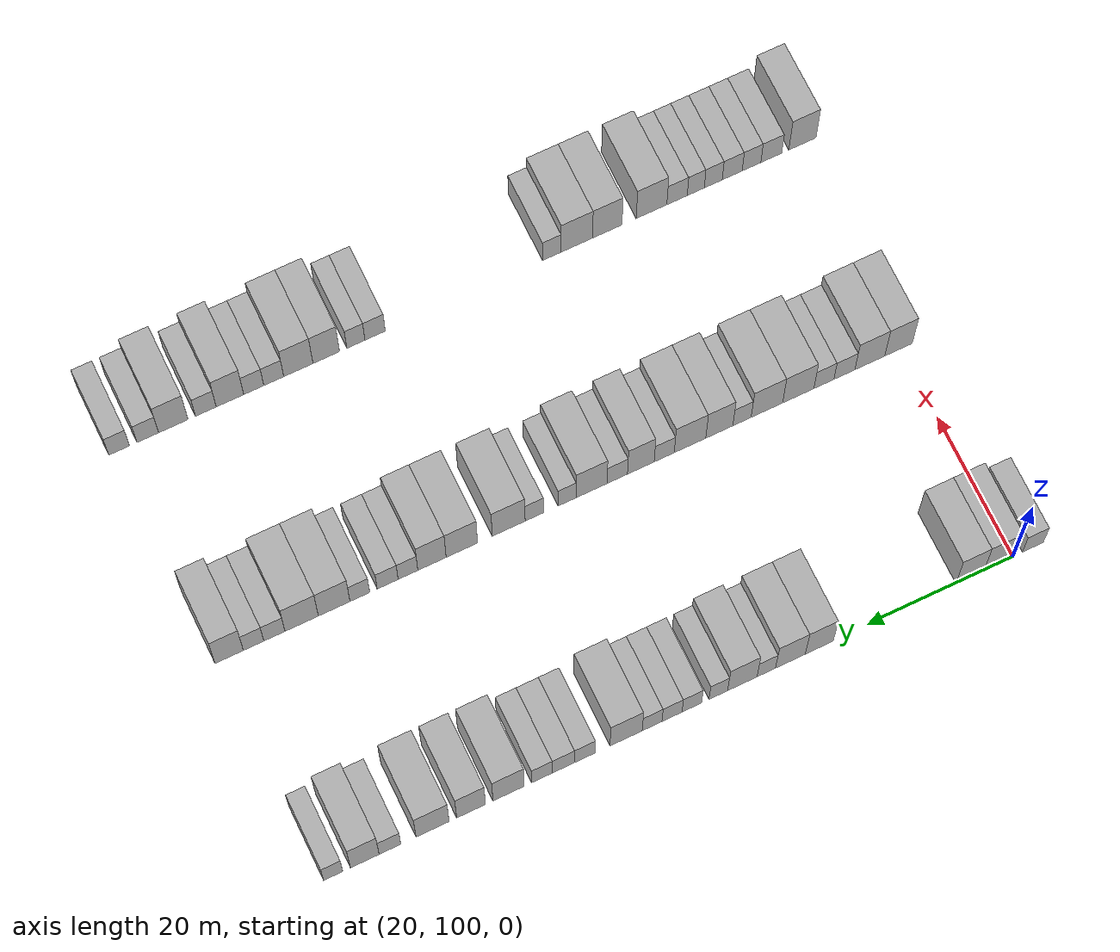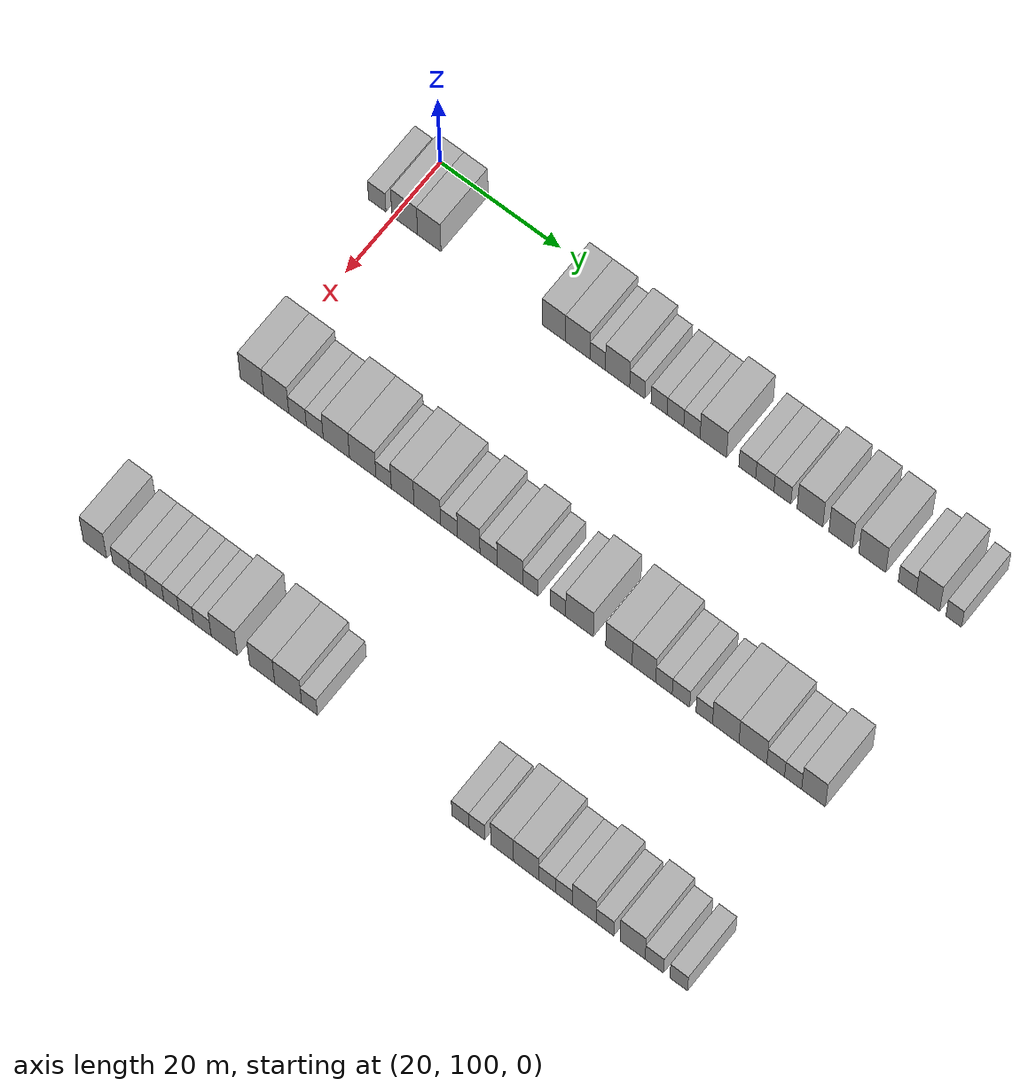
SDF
<sdf version="1.6">
 <world name="default">
  <model name="building_89">
   <static>1</static>
   <pose>25.0000 97.2704 0 0.000000 0.000000 0.000000</pose>
   <link name="link">
    <pose>0 0 3.00 0 0 0</pose>
    <collision name="collision"><geometry><box><size>10.0000 2.9030 6.0000</size></box></geometry></collision>
    <visual name="visual">
     <cast_shadows>0</cast_shadows>
     <geometry><box><size>10.0000 2.9030 6.0000</size></box></geometry>
     <material>
      <script>
       <uri>model://HANNAS_wall/materials/scripts</uri>
       <uri>model://HANNAS_wall/materials/textures</uri>
       <name>vrc/HANNAS_wall</name>
      </script>
     </material>
    </visual>
   </link>
  </model>
  <model name="building_90">
   <static>1</static>
   <pose>25.0000 101.8710 0 0.000000 0.000000 0.000000</pose>
   <link name="link">
    <pose>0 0 4.50 0 0 0</pose>
    <collision name="collision"><geometry><box><size>10.0000 4.2983 9.0000</size></box></geometry></collision>
    <visual name="visual">
     <cast_shadows>0</cast_shadows>
     <geometry><box><size>10.0000 4.2983 9.0000</size></box></geometry>
     <material>
      <script>
       <uri>model://HANNAS_wall/materials/scripts</uri>
       <uri>model://HANNAS_wall/materials/textures</uri>
       <name>vrc/HANNAS_wall</name>
      </script>
     </material>
    </visual>
   </link>
  </model>
  <model name="building_91">
   <static>1</static>
   <pose>25.0000 105.9664 0 0.000000 0.000000 0.000000</pose>
   <link name="link">
    <pose>0 0 4.50 0 0 0</pose>
    <collision name="collision"><geometry><box><size>10.0000 3.8926 9.0000</size></box></geometry></collision>
    <visual name="visual">
     <cast_shadows>0</cast_shadows>
     <geometry><box><size>10.0000 3.8926 9.0000</size></box></geometry>
     <material>
      <script>
       <uri>model://HANNAS_wall/materials/scripts</uri>
       <uri>model://HANNAS_wall/materials/textures</uri>
       <name>vrc/HANNAS_wall</name>
      </script>
     </material>
    </visual>
   </link>
  </model>
  <model name="building_92">
   <static>1</static>
   <pose>25.0000 126.6450 0 0.000000 0.000000 0.000000</pose>
   <link name="link">
    <pose>0 0 4.50 0 0 0</pose>
    <collision name="collision"><geometry><box><size>10.0000 3.8215 9.0000</size></box></geometry></collision>
    <visual name="visual">
     <cast_shadows>0</cast_shadows>
     <geometry><box><size>10.0000 3.8215 9.0000</size></box></geometry>
     <material>
      <script>
       <uri>model://HANNAS_wall/materials/scripts</uri>
       <uri>model://HANNAS_wall/materials/textures</uri>
       <name>vrc/HANNAS_wall</name>
      </script>
     </material>
    </visual>
   </link>
  </model>
  <model name="building_93">
   <static>1</static>
   <pose>25.0000 130.5771 0 0.000000 0.000000 0.000000</pose>
   <link name="link">
    <pose>0 0 4.50 0 0 0</pose>
    <collision name="collision"><geometry><box><size>10.0000 4.0427 9.0000</size></box></geometry></collision>
    <visual name="visual">
     <cast_shadows>0</cast_shadows>
     <geometry><box><size>10.0000 4.0427 9.0000</size></box></geometry>
     <material>
      <script>
       <uri>model://HANNAS_wall/materials/scripts</uri>
       <uri>model://HANNAS_wall/materials/textures</uri>
       <name>vrc/HANNAS_wall</name>
      </script>
     </material>
    </visual>
   </link>
  </model>
  <model name="building_94">
   <static>1</static>
   <pose>25.0000 133.8541 0 0.000000 0.000000 0.000000</pose>
   <link name="link">
    <pose>0 0 3.00 0 0 0</pose>
    <collision name="collision"><geometry><box><size>10.0000 2.5113 6.0000</size></box></geometry></collision>
    <visual name="visual">
     <cast_shadows>0</cast_shadows>
     <geometry><box><size>10.0000 2.5113 6.0000</size></box></geometry>
     <material>
      <script>
       <uri>model://HANNAS_wall/materials/scripts</uri>
       <uri>model://HANNAS_wall/materials/textures</uri>
       <name>vrc/HANNAS_wall</name>
      </script>
     </material>
    </visual>
   </link>
  </model>
  <model name="building_95">
   <static>1</static>
   <pose>25.0000 137.1015 0 0.000000 0.000000 0.000000</pose>
   <link name="link">
    <pose>0 0 4.50 0 0 0</pose>
    <collision name="collision"><geometry><box><size>10.0000 3.9836 9.0000</size></box></geometry></collision>
    <visual name="visual">
     <cast_shadows>0</cast_shadows>
     <geometry><box><size>10.0000 3.9836 9.0000</size></box></geometry>
     <material>
      <script>
       <uri>model://HANNAS_wall/materials/scripts</uri>
       <uri>model://HANNAS_wall/materials/textures</uri>
       <name>vrc/HANNAS_wall</name>
      </script>
     </material>
    </visual>
   </link>
  </model>
  <model name="building_96">
   <static>1</static>
   <pose>25.0000 140.3462 0 0.000000 0.000000 0.000000</pose>
   <link name="link">
    <pose>0 0 3.00 0 0 0</pose>
    <collision name="collision"><geometry><box><size>10.0000 2.5057 6.0000</size></box></geometry></collision>
    <visual name="visual">
     <cast_shadows>0</cast_shadows>
     <geometry><box><size>10.0000 2.5057 6.0000</size></box></geometry>
     <material>
      <script>
       <uri>model://HANNAS_wall/materials/scripts</uri>
       <uri>model://HANNAS_wall/materials/textures</uri>
       <name>vrc/HANNAS_wall</name>
      </script>
     </material>
    </visual>
   </link>
  </model>
  <model name="building_97">
   <static>1</static>
   <pose>25.0000 143.9186 0 0.000000 0.000000 0.000000</pose>
   <link name="link">
    <pose>0 0 3.00 0 0 0</pose>
    <collision name="collision"><geometry><box><size>10.0000 2.6391 6.0000</size></box></geometry></collision>
    <visual name="visual">
     <cast_shadows>0</cast_shadows>
     <geometry><box><size>10.0000 2.6391 6.0000</size></box></geometry>
     <material>
      <script>
       <uri>model://HANNAS_wall/materials/scripts</uri>
       <uri>model://HANNAS_wall/materials/textures</uri>
       <name>vrc/HANNAS_wall</name>
      </script>
     </material>
    </visual>
   </link>
  </model>
  <model name="building_98">
   <static>1</static>
   <pose>25.0000 146.5899 0 0.000000 0.000000 0.000000</pose>
   <link name="link">
    <pose>0 0 3.00 0 0 0</pose>
    <collision name="collision"><geometry><box><size>10.0000 2.7035 6.0000</size></box></geometry></collision>
    <visual name="visual">
     <cast_shadows>0</cast_shadows>
     <geometry><box><size>10.0000 2.7035 6.0000</size></box></geometry>
     <material>
      <script>
       <uri>model://HANNAS_wall/materials/scripts</uri>
       <uri>model://HANNAS_wall/materials/textures</uri>
       <name>vrc/HANNAS_wall</name>
      </script>
     </material>
    </visual>
   </link>
  </model>
  <model name="building_99">
   <static>1</static>
   <pose>25.0000 149.2695 0 0.000000 0.000000 0.000000</pose>
   <link name="link">
    <pose>0 0 3.00 0 0 0</pose>
    <collision name="collision"><geometry><box><size>10.0000 2.6557 6.0000</size></box></geometry></collision>
    <visual name="visual">
     <cast_shadows>0</cast_shadows>
     <geometry><box><size>10.0000 2.6557 6.0000</size></box></geometry>
     <material>
      <script>
       <uri>model://HANNAS_wall/materials/scripts</uri>
       <uri>model://HANNAS_wall/materials/textures</uri>
       <name>vrc/HANNAS_wall</name>
      </script>
     </material>
    </visual>
   </link>
  </model>
  <model name="building_100">
   <static>1</static>
   <pose>25.0000 152.7573 0 0.000000 0.000000 0.000000</pose>
   <link name="link">
    <pose>0 0 4.50 0 0 0</pose>
    <collision name="collision"><geometry><box><size>10.0000 4.3201 9.0000</size></box></geometry></collision>
    <visual name="visual">
     <cast_shadows>0</cast_shadows>
     <geometry><box><size>10.0000 4.3201 9.0000</size></box></geometry>
     <material>
      <script>
       <uri>model://HANNAS_wall/materials/scripts</uri>
       <uri>model://HANNAS_wall/materials/textures</uri>
       <name>vrc/HANNAS_wall</name>
      </script>
     </material>
    </visual>
   </link>
  </model>
  <model name="building_101">
   <static>1</static>
   <pose>25.0000 158.2830 0 0.000000 0.000000 0.000000</pose>
   <link name="link">
    <pose>0 0 3.00 0 0 0</pose>
    <collision name="collision"><geometry><box><size>10.0000 2.7313 6.0000</size></box></geometry></collision>
    <visual name="visual">
     <cast_shadows>0</cast_shadows>
     <geometry><box><size>10.0000 2.7313 6.0000</size></box></geometry>
     <material>
      <script>
       <uri>model://HANNAS_wall/materials/scripts</uri>
       <uri>model://HANNAS_wall/materials/textures</uri>
       <name>vrc/HANNAS_wall</name>
      </script>
     </material>
    </visual>
   </link>
  </model>
  <model name="building_102">
   <static>1</static>
   <pose>25.0000 161.1314 0 0.000000 0.000000 0.000000</pose>
   <link name="link">
    <pose>0 0 3.00 0 0 0</pose>
    <collision name="collision"><geometry><box><size>10.0000 2.9653 6.0000</size></box></geometry></collision>
    <visual name="visual">
     <cast_shadows>0</cast_shadows>
     <geometry><box><size>10.0000 2.9653 6.0000</size></box></geometry>
     <material>
      <script>
       <uri>model://HANNAS_wall/materials/scripts</uri>
       <uri>model://HANNAS_wall/materials/textures</uri>
       <name>vrc/HANNAS_wall</name>
      </script>
     </material>
    </visual>
   </link>
  </model>
  <model name="building_103">
   <static>1</static>
   <pose>25.0000 163.9861 0 0.000000 0.000000 0.000000</pose>
   <link name="link">
    <pose>0 0 3.00 0 0 0</pose>
    <collision name="collision"><geometry><box><size>10.0000 2.7442 6.0000</size></box></geometry></collision>
    <visual name="visual">
     <cast_shadows>0</cast_shadows>
     <geometry><box><size>10.0000 2.7442 6.0000</size></box></geometry>
     <material>
      <script>
       <uri>model://HANNAS_wall/materials/scripts</uri>
       <uri>model://HANNAS_wall/materials/textures</uri>
       <name>vrc/HANNAS_wall</name>
      </script>
     </material>
    </visual>
   </link>
  </model>
  <model name="building_104">
   <static>1</static>
   <pose>25.0000 168.4313 0 0.000000 0.000000 0.000000</pose>
   <link name="link">
    <pose>0 0 4.50 0 0 0</pose>
    <collision name="collision"><geometry><box><size>10.0000 4.1461 9.0000</size></box></geometry></collision>
    <visual name="visual">
     <cast_shadows>0</cast_shadows>
     <geometry><box><size>10.0000 4.1461 9.0000</size></box></geometry>
     <material>
      <script>
       <uri>model://HANNAS_wall/materials/scripts</uri>
       <uri>model://HANNAS_wall/materials/textures</uri>
       <name>vrc/HANNAS_wall</name>
      </script>
     </material>
    </visual>
   </link>
  </model>
  <model name="building_105">
   <static>1</static>
   <pose>25.0000 173.4056 0 0.000000 0.000000 0.000000</pose>
   <link name="link">
    <pose>0 0 4.50 0 0 0</pose>
    <collision name="collision"><geometry><box><size>10.0000 3.8025 9.0000</size></box></geometry></collision>
    <visual name="visual">
     <cast_shadows>0</cast_shadows>
     <geometry><box><size>10.0000 3.8025 9.0000</size></box></geometry>
     <material>
      <script>
       <uri>model://HANNAS_wall/materials/scripts</uri>
       <uri>model://HANNAS_wall/materials/textures</uri>
       <name>vrc/HANNAS_wall</name>
      </script>
     </material>
    </visual>
   </link>
  </model>
  <model name="building_106">
   <static>1</static>
   <pose>25.0000 178.4895 0 0.000000 0.000000 0.000000</pose>
   <link name="link">
    <pose>0 0 4.50 0 0 0</pose>
    <collision name="collision"><geometry><box><size>10.0000 4.3653 9.0000</size></box></geometry></collision>
    <visual name="visual">
     <cast_shadows>0</cast_shadows>
     <geometry><box><size>10.0000 4.3653 9.0000</size></box></geometry>
     <material>
      <script>
       <uri>model://HANNAS_wall/materials/scripts</uri>
       <uri>model://HANNAS_wall/materials/textures</uri>
       <name>vrc/HANNAS_wall</name>
      </script>
     </material>
    </visual>
   </link>
  </model>
  <model name="building_107">
   <static>1</static>
   <pose>25.0000 184.1009 0 0.000000 0.000000 0.000000</pose>
   <link name="link">
    <pose>0 0 3.00 0 0 0</pose>
    <collision name="collision"><geometry><box><size>10.0000 2.8574 6.0000</size></box></geometry></collision>
    <visual name="visual">
     <cast_shadows>0</cast_shadows>
     <geometry><box><size>10.0000 2.8574 6.0000</size></box></geometry>
     <material>
      <script>
       <uri>model://HANNAS_wall/materials/scripts</uri>
       <uri>model://HANNAS_wall/materials/textures</uri>
       <name>vrc/HANNAS_wall</name>
      </script>
     </material>
    </visual>
   </link>
  </model>
  <model name="building_108">
   <static>1</static>
   <pose>25.0000 187.4110 0 0.000000 0.000000 0.000000</pose>
   <link name="link">
    <pose>0 0 4.50 0 0 0</pose>
    <collision name="collision"><geometry><box><size>10.0000 3.7629 9.0000</size></box></geometry></collision>
    <visual name="visual">
     <cast_shadows>0</cast_shadows>
     <geometry><box><size>10.0000 3.7629 9.0000</size></box></geometry>
     <material>
      <script>
       <uri>model://HANNAS_wall/materials/scripts</uri>
       <uri>model://HANNAS_wall/materials/textures</uri>
       <name>vrc/HANNAS_wall</name>
      </script>
     </material>
    </visual>
   </link>
  </model>
  <model name="building_109">
   <static>1</static>
   <pose>25.0000 191.5527 0 0.000000 0.000000 0.000000</pose>
   <link name="link">
    <pose>0 0 3.00 0 0 0</pose>
    <collision name="collision"><geometry><box><size>10.0000 2.5204 6.0000</size></box></geometry></collision>
    <visual name="visual">
     <cast_shadows>0</cast_shadows>
     <geometry><box><size>10.0000 2.5204 6.0000</size></box></geometry>
     <material>
      <script>
       <uri>model://HANNAS_wall/materials/scripts</uri>
       <uri>model://HANNAS_wall/materials/textures</uri>
       <name>vrc/HANNAS_wall</name>
      </script>
     </material>
    </visual>
   </link>
  </model>
  <model name="building_218">
   <static>1</static>
   <pose>55.0000 100.3055 0 0.000000 0.000000 0.000000</pose>
   <link name="link">
    <pose>0 0 4.50 0 0 0</pose>
    <collision name="collision"><geometry><box><size>10.0000 3.8746 9.0000</size></box></geometry></collision>
    <visual name="visual">
     <cast_shadows>0</cast_shadows>
     <geometry><box><size>10.0000 3.8746 9.0000</size></box></geometry>
     <material>
      <script>
       <uri>model://HANNAS_wall/materials/scripts</uri>
       <uri>model://HANNAS_wall/materials/textures</uri>
       <name>vrc/HANNAS_wall</name>
      </script>
     </material>
    </visual>
   </link>
  </model>
  <model name="building_219">
   <static>1</static>
   <pose>55.0000 104.3319 0 0.000000 0.000000 0.000000</pose>
   <link name="link">
    <pose>0 0 4.50 0 0 0</pose>
    <collision name="collision"><geometry><box><size>10.0000 4.1781 9.0000</size></box></geometry></collision>
    <visual name="visual">
     <cast_shadows>0</cast_shadows>
     <geometry><box><size>10.0000 4.1781 9.0000</size></box></geometry>
     <material>
      <script>
       <uri>model://HANNAS_wall/materials/scripts</uri>
       <uri>model://HANNAS_wall/materials/textures</uri>
       <name>vrc/HANNAS_wall</name>
      </script>
     </material>
    </visual>
   </link>
  </model>
  <model name="building_220">
   <static>1</static>
   <pose>55.0000 107.8814 0 0.000000 0.000000 0.000000</pose>
   <link name="link">
    <pose>0 0 3.00 0 0 0</pose>
    <collision name="collision"><geometry><box><size>10.0000 2.9210 6.0000</size></box></geometry></collision>
    <visual name="visual">
     <cast_shadows>0</cast_shadows>
     <geometry><box><size>10.0000 2.9210 6.0000</size></box></geometry>
     <material>
      <script>
       <uri>model://HANNAS_wall/materials/scripts</uri>
       <uri>model://HANNAS_wall/materials/textures</uri>
       <name>vrc/HANNAS_wall</name>
      </script>
     </material>
    </visual>
   </link>
  </model>
  <model name="building_221">
   <static>1</static>
   <pose>55.0000 110.7431 0 0.000000 0.000000 0.000000</pose>
   <link name="link">
    <pose>0 0 3.00 0 0 0</pose>
    <collision name="collision"><geometry><box><size>10.0000 2.8024 6.0000</size></box></geometry></collision>
    <visual name="visual">
     <cast_shadows>0</cast_shadows>
     <geometry><box><size>10.0000 2.8024 6.0000</size></box></geometry>
     <material>
      <script>
       <uri>model://HANNAS_wall/materials/scripts</uri>
       <uri>model://HANNAS_wall/materials/textures</uri>
       <name>vrc/HANNAS_wall</name>
      </script>
     </material>
    </visual>
   </link>
  </model>
  <model name="building_222">
   <static>1</static>
   <pose>55.0000 114.3135 0 0.000000 0.000000 0.000000</pose>
   <link name="link">
    <pose>0 0 4.50 0 0 0</pose>
    <collision name="collision"><geometry><box><size>10.0000 4.3382 9.0000</size></box></geometry></collision>
    <visual name="visual">
     <cast_shadows>0</cast_shadows>
     <geometry><box><size>10.0000 4.3382 9.0000</size></box></geometry>
     <material>
      <script>
       <uri>model://HANNAS_wall/materials/scripts</uri>
       <uri>model://HANNAS_wall/materials/textures</uri>
       <name>vrc/HANNAS_wall</name>
      </script>
     </material>
    </visual>
   </link>
  </model>
  <model name="building_223">
   <static>1</static>
   <pose>55.0000 118.6711 0 0.000000 0.000000 0.000000</pose>
   <link name="link">
    <pose>0 0 4.50 0 0 0</pose>
    <collision name="collision"><geometry><box><size>10.0000 4.3771 9.0000</size></box></geometry></collision>
    <visual name="visual">
     <cast_shadows>0</cast_shadows>
     <geometry><box><size>10.0000 4.3771 9.0000</size></box></geometry>
     <material>
      <script>
       <uri>model://HANNAS_wall/materials/scripts</uri>
       <uri>model://HANNAS_wall/materials/textures</uri>
       <name>vrc/HANNAS_wall</name>
      </script>
     </material>
    </visual>
   </link>
  </model>
  <model name="building_224">
   <static>1</static>
   <pose>55.0000 122.1209 0 0.000000 0.000000 0.000000</pose>
   <link name="link">
    <pose>0 0 3.00 0 0 0</pose>
    <collision name="collision"><geometry><box><size>10.0000 2.5224 6.0000</size></box></geometry></collision>
    <visual name="visual">
     <cast_shadows>0</cast_shadows>
     <geometry><box><size>10.0000 2.5224 6.0000</size></box></geometry>
     <material>
      <script>
       <uri>model://HANNAS_wall/materials/scripts</uri>
       <uri>model://HANNAS_wall/materials/textures</uri>
       <name>vrc/HANNAS_wall</name>
      </script>
     </material>
    </visual>
   </link>
  </model>
  <model name="building_225">
   <static>1</static>
   <pose>55.0000 125.2577 0 0.000000 0.000000 0.000000</pose>
   <link name="link">
    <pose>0 0 4.50 0 0 0</pose>
    <collision name="collision"><geometry><box><size>10.0000 3.7513 9.0000</size></box></geometry></collision>
    <visual name="visual">
     <cast_shadows>0</cast_shadows>
     <geometry><box><size>10.0000 3.7513 9.0000</size></box></geometry>
     <material>
      <script>
       <uri>model://HANNAS_wall/materials/scripts</uri>
       <uri>model://HANNAS_wall/materials/textures</uri>
       <name>vrc/HANNAS_wall</name>
      </script>
     </material>
    </visual>
   </link>
  </model>
  <model name="building_226">
   <static>1</static>
   <pose>55.0000 129.3107 0 0.000000 0.000000 0.000000</pose>
   <link name="link">
    <pose>0 0 4.50 0 0 0</pose>
    <collision name="collision"><geometry><box><size>10.0000 4.3547 9.0000</size></box></geometry></collision>
    <visual name="visual">
     <cast_shadows>0</cast_shadows>
     <geometry><box><size>10.0000 4.3547 9.0000</size></box></geometry>
     <material>
      <script>
       <uri>model://HANNAS_wall/materials/scripts</uri>
       <uri>model://HANNAS_wall/materials/textures</uri>
       <name>vrc/HANNAS_wall</name>
      </script>
     </material>
    </visual>
   </link>
  </model>
  <model name="building_227">
   <static>1</static>
   <pose>55.0000 132.8672 0 0.000000 0.000000 0.000000</pose>
   <link name="link">
    <pose>0 0 3.00 0 0 0</pose>
    <collision name="collision"><geometry><box><size>10.0000 2.7582 6.0000</size></box></geometry></collision>
    <visual name="visual">
     <cast_shadows>0</cast_shadows>
     <geometry><box><size>10.0000 2.7582 6.0000</size></box></geometry>
     <material>
      <script>
       <uri>model://HANNAS_wall/materials/scripts</uri>
       <uri>model://HANNAS_wall/materials/textures</uri>
       <name>vrc/HANNAS_wall</name>
      </script>
     </material>
    </visual>
   </link>
  </model>
  <model name="building_228">
   <static>1</static>
   <pose>55.0000 136.0830 0 0.000000 0.000000 0.000000</pose>
   <link name="link">
    <pose>0 0 4.50 0 0 0</pose>
    <collision name="collision"><geometry><box><size>10.0000 3.6735 9.0000</size></box></geometry></collision>
    <visual name="visual">
     <cast_shadows>0</cast_shadows>
     <geometry><box><size>10.0000 3.6735 9.0000</size></box></geometry>
     <material>
      <script>
       <uri>model://HANNAS_wall/materials/scripts</uri>
       <uri>model://HANNAS_wall/materials/textures</uri>
       <name>vrc/HANNAS_wall</name>
      </script>
     </material>
    </visual>
   </link>
  </model>
  <model name="building_229">
   <static>1</static>
   <pose>55.0000 139.3221 0 0.000000 0.000000 0.000000</pose>
   <link name="link">
    <pose>0 0 3.00 0 0 0</pose>
    <collision name="collision"><geometry><box><size>10.0000 2.8047 6.0000</size></box></geometry></collision>
    <visual name="visual">
     <cast_shadows>0</cast_shadows>
     <geometry><box><size>10.0000 2.8047 6.0000</size></box></geometry>
     <material>
      <script>
       <uri>model://HANNAS_wall/materials/scripts</uri>
       <uri>model://HANNAS_wall/materials/textures</uri>
       <name>vrc/HANNAS_wall</name>
      </script>
     </material>
    </visual>
   </link>
  </model>
  <model name="building_230">
   <static>1</static>
   <pose>55.0000 142.8488 0 0.000000 0.000000 0.000000</pose>
   <link name="link">
    <pose>0 0 4.50 0 0 0</pose>
    <collision name="collision"><geometry><box><size>10.0000 4.2486 9.0000</size></box></geometry></collision>
    <visual name="visual">
     <cast_shadows>0</cast_shadows>
     <geometry><box><size>10.0000 4.2486 9.0000</size></box></geometry>
     <material>
      <script>
       <uri>model://HANNAS_wall/materials/scripts</uri>
       <uri>model://HANNAS_wall/materials/textures</uri>
       <name>vrc/HANNAS_wall</name>
      </script>
     </material>
    </visual>
   </link>
  </model>
  <model name="building_231">
   <static>1</static>
   <pose>55.0000 146.1940 0 0.000000 0.000000 0.000000</pose>
   <link name="link">
    <pose>0 0 3.00 0 0 0</pose>
    <collision name="collision"><geometry><box><size>10.0000 2.4418 6.0000</size></box></geometry></collision>
    <visual name="visual">
     <cast_shadows>0</cast_shadows>
     <geometry><box><size>10.0000 2.4418 6.0000</size></box></geometry>
     <material>
      <script>
       <uri>model://HANNAS_wall/materials/scripts</uri>
       <uri>model://HANNAS_wall/materials/textures</uri>
       <name>vrc/HANNAS_wall</name>
      </script>
     </material>
    </visual>
   </link>
  </model>
  <model name="building_232">
   <static>1</static>
   <pose>55.0000 150.6536 0 0.000000 0.000000 0.000000</pose>
   <link name="link">
    <pose>0 0 3.00 0 0 0</pose>
    <collision name="collision"><geometry><box><size>10.0000 2.4776 6.0000</size></box></geometry></collision>
    <visual name="visual">
     <cast_shadows>0</cast_shadows>
     <geometry><box><size>10.0000 2.4776 6.0000</size></box></geometry>
     <material>
      <script>
       <uri>model://HANNAS_wall/materials/scripts</uri>
       <uri>model://HANNAS_wall/materials/textures</uri>
       <name>vrc/HANNAS_wall</name>
      </script>
     </material>
    </visual>
   </link>
  </model>
  <model name="building_233">
   <static>1</static>
   <pose>55.0000 154.1288 0 0.000000 0.000000 0.000000</pose>
   <link name="link">
    <pose>0 0 4.50 0 0 0</pose>
    <collision name="collision"><geometry><box><size>10.0000 4.4728 9.0000</size></box></geometry></collision>
    <visual name="visual">
     <cast_shadows>0</cast_shadows>
     <geometry><box><size>10.0000 4.4728 9.0000</size></box></geometry>
     <material>
      <script>
       <uri>model://HANNAS_wall/materials/scripts</uri>
       <uri>model://HANNAS_wall/materials/textures</uri>
       <name>vrc/HANNAS_wall</name>
      </script>
     </material>
    </visual>
   </link>
  </model>
  <model name="building_234">
   <static>1</static>
   <pose>55.0000 160.4897 0 0.000000 0.000000 0.000000</pose>
   <link name="link">
    <pose>0 0 4.50 0 0 0</pose>
    <collision name="collision"><geometry><box><size>10.0000 4.2489 9.0000</size></box></geometry></collision>
    <visual name="visual">
     <cast_shadows>0</cast_shadows>
     <geometry><box><size>10.0000 4.2489 9.0000</size></box></geometry>
     <material>
      <script>
       <uri>model://HANNAS_wall/materials/scripts</uri>
       <uri>model://HANNAS_wall/materials/textures</uri>
       <name>vrc/HANNAS_wall</name>
      </script>
     </material>
    </visual>
   </link>
  </model>
  <model name="building_235">
   <static>1</static>
   <pose>55.0000 164.5257 0 0.000000 0.000000 0.000000</pose>
   <link name="link">
    <pose>0 0 4.50 0 0 0</pose>
    <collision name="collision"><geometry><box><size>10.0000 3.8232 9.0000</size></box></geometry></collision>
    <visual name="visual">
     <cast_shadows>0</cast_shadows>
     <geometry><box><size>10.0000 3.8232 9.0000</size></box></geometry>
     <material>
      <script>
       <uri>model://HANNAS_wall/materials/scripts</uri>
       <uri>model://HANNAS_wall/materials/textures</uri>
       <name>vrc/HANNAS_wall</name>
      </script>
     </material>
    </visual>
   </link>
  </model>
  <model name="building_236">
   <static>1</static>
   <pose>55.0000 167.7658 0 0.000000 0.000000 0.000000</pose>
   <link name="link">
    <pose>0 0 3.00 0 0 0</pose>
    <collision name="collision"><geometry><box><size>10.0000 2.6569 6.0000</size></box></geometry></collision>
    <visual name="visual">
     <cast_shadows>0</cast_shadows>
     <geometry><box><size>10.0000 2.6569 6.0000</size></box></geometry>
     <material>
      <script>
       <uri>model://HANNAS_wall/materials/scripts</uri>
       <uri>model://HANNAS_wall/materials/textures</uri>
       <name>vrc/HANNAS_wall</name>
      </script>
     </material>
    </visual>
   </link>
  </model>
  <model name="building_237">
   <static>1</static>
   <pose>55.0000 170.5023 0 0.000000 0.000000 0.000000</pose>
   <link name="link">
    <pose>0 0 3.00 0 0 0</pose>
    <collision name="collision"><geometry><box><size>10.0000 2.8161 6.0000</size></box></geometry></collision>
    <visual name="visual">
     <cast_shadows>0</cast_shadows>
     <geometry><box><size>10.0000 2.8161 6.0000</size></box></geometry>
     <material>
      <script>
       <uri>model://HANNAS_wall/materials/scripts</uri>
       <uri>model://HANNAS_wall/materials/textures</uri>
       <name>vrc/HANNAS_wall</name>
      </script>
     </material>
    </visual>
   </link>
  </model>
  <model name="building_238">
   <static>1</static>
   <pose>55.0000 174.2338 0 0.000000 0.000000 0.000000</pose>
   <link name="link">
    <pose>0 0 3.00 0 0 0</pose>
    <collision name="collision"><geometry><box><size>10.0000 2.6468 6.0000</size></box></geometry></collision>
    <visual name="visual">
     <cast_shadows>0</cast_shadows>
     <geometry><box><size>10.0000 2.6468 6.0000</size></box></geometry>
     <material>
      <script>
       <uri>model://HANNAS_wall/materials/scripts</uri>
       <uri>model://HANNAS_wall/materials/textures</uri>
       <name>vrc/HANNAS_wall</name>
      </script>
     </material>
    </visual>
   </link>
  </model>
  <model name="building_239">
   <static>1</static>
   <pose>55.0000 177.6771 0 0.000000 0.000000 0.000000</pose>
   <link name="link">
    <pose>0 0 4.50 0 0 0</pose>
    <collision name="collision"><geometry><box><size>10.0000 4.2398 9.0000</size></box></geometry></collision>
    <visual name="visual">
     <cast_shadows>0</cast_shadows>
     <geometry><box><size>10.0000 4.2398 9.0000</size></box></geometry>
     <material>
      <script>
       <uri>model://HANNAS_wall/materials/scripts</uri>
       <uri>model://HANNAS_wall/materials/textures</uri>
       <name>vrc/HANNAS_wall</name>
      </script>
     </material>
    </visual>
   </link>
  </model>
  <model name="building_240">
   <static>1</static>
   <pose>55.0000 182.0290 0 0.000000 0.000000 0.000000</pose>
   <link name="link">
    <pose>0 0 4.50 0 0 0</pose>
    <collision name="collision"><geometry><box><size>10.0000 4.4640 9.0000</size></box></geometry></collision>
    <visual name="visual">
     <cast_shadows>0</cast_shadows>
     <geometry><box><size>10.0000 4.4640 9.0000</size></box></geometry>
     <material>
      <script>
       <uri>model://HANNAS_wall/materials/scripts</uri>
       <uri>model://HANNAS_wall/materials/textures</uri>
       <name>vrc/HANNAS_wall</name>
      </script>
     </material>
    </visual>
   </link>
  </model>
  <model name="building_241">
   <static>1</static>
   <pose>55.0000 185.6701 0 0.000000 0.000000 0.000000</pose>
   <link name="link">
    <pose>0 0 3.00 0 0 0</pose>
    <collision name="collision"><geometry><box><size>10.0000 2.8182 6.0000</size></box></geometry></collision>
    <visual name="visual">
     <cast_shadows>0</cast_shadows>
     <geometry><box><size>10.0000 2.8182 6.0000</size></box></geometry>
     <material>
      <script>
       <uri>model://HANNAS_wall/materials/scripts</uri>
       <uri>model://HANNAS_wall/materials/textures</uri>
       <name>vrc/HANNAS_wall</name>
      </script>
     </material>
    </visual>
   </link>
  </model>
  <model name="building_242">
   <static>1</static>
   <pose>55.0000 188.4445 0 0.000000 0.000000 0.000000</pose>
   <link name="link">
    <pose>0 0 3.00 0 0 0</pose>
    <collision name="collision"><geometry><box><size>10.0000 2.7305 6.0000</size></box></geometry></collision>
    <visual name="visual">
     <cast_shadows>0</cast_shadows>
     <geometry><box><size>10.0000 2.7305 6.0000</size></box></geometry>
     <material>
      <script>
       <uri>model://HANNAS_wall/materials/scripts</uri>
       <uri>model://HANNAS_wall/materials/textures</uri>
       <name>vrc/HANNAS_wall</name>
      </script>
     </material>
    </visual>
   </link>
  </model>
  <model name="building_243">
   <static>1</static>
   <pose>55.0000 191.6956 0 0.000000 0.000000 0.000000</pose>
   <link name="link">
    <pose>0 0 4.50 0 0 0</pose>
    <collision name="collision"><geometry><box><size>10.0000 3.7718 9.0000</size></box></geometry></collision>
    <visual name="visual">
     <cast_shadows>0</cast_shadows>
     <geometry><box><size>10.0000 3.7718 9.0000</size></box></geometry>
     <material>
      <script>
       <uri>model://HANNAS_wall/materials/scripts</uri>
       <uri>model://HANNAS_wall/materials/textures</uri>
       <name>vrc/HANNAS_wall</name>
      </script>
     </material>
    </visual>
   </link>
  </model>
  <model name="building_366">
   <static>1</static>
   <pose>85.0000 98.5248 0 0.000000 0.000000 0.000000</pose>
   <link name="link">
    <pose>0 0 4.50 0 0 0</pose>
    <collision name="collision"><geometry><box><size>10.0000 3.8736 9.0000</size></box></geometry></collision>
    <visual name="visual">
     <cast_shadows>0</cast_shadows>
     <geometry><box><size>10.0000 3.8736 9.0000</size></box></geometry>
     <material>
      <script>
       <uri>model://HANNAS_wall/materials/scripts</uri>
       <uri>model://HANNAS_wall/materials/textures</uri>
       <name>vrc/HANNAS_wall</name>
      </script>
     </material>
    </visual>
   </link>
  </model>
  <model name="building_367">
   <static>1</static>
   <pose>85.0000 102.9447 0 0.000000 0.000000 0.000000</pose>
   <link name="link">
    <pose>0 0 3.00 0 0 0</pose>
    <collision name="collision"><geometry><box><size>10.0000 2.9661 6.0000</size></box></geometry></collision>
    <visual name="visual">
     <cast_shadows>0</cast_shadows>
     <geometry><box><size>10.0000 2.9661 6.0000</size></box></geometry>
     <material>
      <script>
       <uri>model://HANNAS_wall/materials/scripts</uri>
       <uri>model://HANNAS_wall/materials/textures</uri>
       <name>vrc/HANNAS_wall</name>
      </script>
     </material>
    </visual>
   </link>
  </model>
  <model name="building_368">
   <static>1</static>
   <pose>85.0000 105.7553 0 0.000000 0.000000 0.000000</pose>
   <link name="link">
    <pose>0 0 3.00 0 0 0</pose>
    <collision name="collision"><geometry><box><size>10.0000 2.6551 6.0000</size></box></geometry></collision>
    <visual name="visual">
     <cast_shadows>0</cast_shadows>
     <geometry><box><size>10.0000 2.6551 6.0000</size></box></geometry>
     <material>
      <script>
       <uri>model://HANNAS_wall/materials/scripts</uri>
       <uri>model://HANNAS_wall/materials/textures</uri>
       <name>vrc/HANNAS_wall</name>
      </script>
     </material>
    </visual>
   </link>
  </model>
  <model name="building_369">
   <static>1</static>
   <pose>85.0000 108.4948 0 0.000000 0.000000 0.000000</pose>
   <link name="link">
    <pose>0 0 3.00 0 0 0</pose>
    <collision name="collision"><geometry><box><size>10.0000 2.8239 6.0000</size></box></geometry></collision>
    <visual name="visual">
     <cast_shadows>0</cast_shadows>
     <geometry><box><size>10.0000 2.8239 6.0000</size></box></geometry>
     <material>
      <script>
       <uri>model://HANNAS_wall/materials/scripts</uri>
       <uri>model://HANNAS_wall/materials/textures</uri>
       <name>vrc/HANNAS_wall</name>
      </script>
     </material>
    </visual>
   </link>
  </model>
  <model name="building_370">
   <static>1</static>
   <pose>85.0000 111.1759 0 0.000000 0.000000 0.000000</pose>
   <link name="link">
    <pose>0 0 3.00 0 0 0</pose>
    <collision name="collision"><geometry><box><size>10.0000 2.5381 6.0000</size></box></geometry></collision>
    <visual name="visual">
     <cast_shadows>0</cast_shadows>
     <geometry><box><size>10.0000 2.5381 6.0000</size></box></geometry>
     <material>
      <script>
       <uri>model://HANNAS_wall/materials/scripts</uri>
       <uri>model://HANNAS_wall/materials/textures</uri>
       <name>vrc/HANNAS_wall</name>
      </script>
     </material>
    </visual>
   </link>
  </model>
  <model name="building_371">
   <static>1</static>
   <pose>85.0000 113.6459 0 0.000000 0.000000 0.000000</pose>
   <link name="link">
    <pose>0 0 3.00 0 0 0</pose>
    <collision name="collision"><geometry><box><size>10.0000 2.4020 6.0000</size></box></geometry></collision>
    <visual name="visual">
     <cast_shadows>0</cast_shadows>
     <geometry><box><size>10.0000 2.4020 6.0000</size></box></geometry>
     <material>
      <script>
       <uri>model://HANNAS_wall/materials/scripts</uri>
       <uri>model://HANNAS_wall/materials/textures</uri>
       <name>vrc/HANNAS_wall</name>
      </script>
     </material>
    </visual>
   </link>
  </model>
  <model name="building_372">
   <static>1</static>
   <pose>85.0000 116.2856 0 0.000000 0.000000 0.000000</pose>
   <link name="link">
    <pose>0 0 3.00 0 0 0</pose>
    <collision name="collision"><geometry><box><size>10.0000 2.8775 6.0000</size></box></geometry></collision>
    <visual name="visual">
     <cast_shadows>0</cast_shadows>
     <geometry><box><size>10.0000 2.8775 6.0000</size></box></geometry>
     <material>
      <script>
       <uri>model://HANNAS_wall/materials/scripts</uri>
       <uri>model://HANNAS_wall/materials/textures</uri>
       <name>vrc/HANNAS_wall</name>
      </script>
     </material>
    </visual>
   </link>
  </model>
  <model name="building_373">
   <static>1</static>
   <pose>85.0000 119.8778 0 0.000000 0.000000 0.000000</pose>
   <link name="link">
    <pose>0 0 4.50 0 0 0</pose>
    <collision name="collision"><geometry><box><size>10.0000 4.3069 9.0000</size></box></geometry></collision>
    <visual name="visual">
     <cast_shadows>0</cast_shadows>
     <geometry><box><size>10.0000 4.3069 9.0000</size></box></geometry>
     <material>
      <script>
       <uri>model://HANNAS_wall/materials/scripts</uri>
       <uri>model://HANNAS_wall/materials/textures</uri>
       <name>vrc/HANNAS_wall</name>
      </script>
     </material>
    </visual>
   </link>
  </model>
  <model name="building_374">
   <static>1</static>
   <pose>85.0000 126.0905 0 0.000000 0.000000 0.000000</pose>
   <link name="link">
    <pose>0 0 4.50 0 0 0</pose>
    <collision name="collision"><geometry><box><size>10.0000 4.1185 9.0000</size></box></geometry></collision>
    <visual name="visual">
     <cast_shadows>0</cast_shadows>
     <geometry><box><size>10.0000 4.1185 9.0000</size></box></geometry>
     <material>
      <script>
       <uri>model://HANNAS_wall/materials/scripts</uri>
       <uri>model://HANNAS_wall/materials/textures</uri>
       <name>vrc/HANNAS_wall</name>
      </script>
     </material>
    </visual>
   </link>
  </model>
  <model name="building_375">
   <static>1</static>
   <pose>85.0000 130.3464 0 0.000000 0.000000 0.000000</pose>
   <link name="link">
    <pose>0 0 4.50 0 0 0</pose>
    <collision name="collision"><geometry><box><size>10.0000 4.3933 9.0000</size></box></geometry></collision>
    <visual name="visual">
     <cast_shadows>0</cast_shadows>
     <geometry><box><size>10.0000 4.3933 9.0000</size></box></geometry>
     <material>
      <script>
       <uri>model://HANNAS_wall/materials/scripts</uri>
       <uri>model://HANNAS_wall/materials/textures</uri>
       <name>vrc/HANNAS_wall</name>
      </script>
     </material>
    </visual>
   </link>
  </model>
  <model name="building_376">
   <static>1</static>
   <pose>85.0000 133.8383 0 0.000000 0.000000 0.000000</pose>
   <link name="link">
    <pose>0 0 3.00 0 0 0</pose>
    <collision name="collision"><geometry><box><size>10.0000 2.5907 6.0000</size></box></geometry></collision>
    <visual name="visual">
     <cast_shadows>0</cast_shadows>
     <geometry><box><size>10.0000 2.5907 6.0000</size></box></geometry>
     <material>
      <script>
       <uri>model://HANNAS_wall/materials/scripts</uri>
       <uri>model://HANNAS_wall/materials/textures</uri>
       <name>vrc/HANNAS_wall</name>
      </script>
     </material>
    </visual>
   </link>
  </model>
  <model name="building_377">
   <static>1</static>
   <pose>85.0000 158.3230 0 0.000000 0.000000 0.000000</pose>
   <link name="link">
    <pose>0 0 3.00 0 0 0</pose>
    <collision name="collision"><geometry><box><size>10.0000 2.7929 6.0000</size></box></geometry></collision>
    <visual name="visual">
     <cast_shadows>0</cast_shadows>
     <geometry><box><size>10.0000 2.7929 6.0000</size></box></geometry>
     <material>
      <script>
       <uri>model://HANNAS_wall/materials/scripts</uri>
       <uri>model://HANNAS_wall/materials/textures</uri>
       <name>vrc/HANNAS_wall</name>
      </script>
     </material>
    </visual>
   </link>
  </model>
  <model name="building_378">
   <static>1</static>
   <pose>85.0000 160.9638 0 0.000000 0.000000 0.000000</pose>
   <link name="link">
    <pose>0 0 3.00 0 0 0</pose>
    <collision name="collision"><geometry><box><size>10.0000 2.4888 6.0000</size></box></geometry></collision>
    <visual name="visual">
     <cast_shadows>0</cast_shadows>
     <geometry><box><size>10.0000 2.4888 6.0000</size></box></geometry>
     <material>
      <script>
       <uri>model://HANNAS_wall/materials/scripts</uri>
       <uri>model://HANNAS_wall/materials/textures</uri>
       <name>vrc/HANNAS_wall</name>
      </script>
     </material>
    </visual>
   </link>
  </model>
  <model name="building_379">
   <static>1</static>
   <pose>85.0000 165.0261 0 0.000000 0.000000 0.000000</pose>
   <link name="link">
    <pose>0 0 4.50 0 0 0</pose>
    <collision name="collision"><geometry><box><size>10.0000 3.6358 9.0000</size></box></geometry></collision>
    <visual name="visual">
     <cast_shadows>0</cast_shadows>
     <geometry><box><size>10.0000 3.6358 9.0000</size></box></geometry>
     <material>
      <script>
       <uri>model://HANNAS_wall/materials/scripts</uri>
       <uri>model://HANNAS_wall/materials/textures</uri>
       <name>vrc/HANNAS_wall</name>
      </script>
     </material>
    </visual>
   </link>
  </model>
  <model name="building_380">
   <static>1</static>
   <pose>85.0000 168.8438 0 0.000000 0.000000 0.000000</pose>
   <link name="link">
    <pose>0 0 4.50 0 0 0</pose>
    <collision name="collision"><geometry><box><size>10.0000 3.9996 9.0000</size></box></geometry></collision>
    <visual name="visual">
     <cast_shadows>0</cast_shadows>
     <geometry><box><size>10.0000 3.9996 9.0000</size></box></geometry>
     <material>
      <script>
       <uri>model://HANNAS_wall/materials/scripts</uri>
       <uri>model://HANNAS_wall/materials/textures</uri>
       <name>vrc/HANNAS_wall</name>
      </script>
     </material>
    </visual>
   </link>
  </model>
  <model name="building_381">
   <static>1</static>
   <pose>85.0000 172.2035 0 0.000000 0.000000 0.000000</pose>
   <link name="link">
    <pose>0 0 3.00 0 0 0</pose>
    <collision name="collision"><geometry><box><size>10.0000 2.7199 6.0000</size></box></geometry></collision>
    <visual name="visual">
     <cast_shadows>0</cast_shadows>
     <geometry><box><size>10.0000 2.7199 6.0000</size></box></geometry>
     <material>
      <script>
       <uri>model://HANNAS_wall/materials/scripts</uri>
       <uri>model://HANNAS_wall/materials/textures</uri>
       <name>vrc/HANNAS_wall</name>
      </script>
     </material>
    </visual>
   </link>
  </model>
  <model name="building_382">
   <static>1</static>
   <pose>85.0000 174.9315 0 0.000000 0.000000 0.000000</pose>
   <link name="link">
    <pose>0 0 3.00 0 0 0</pose>
    <collision name="collision"><geometry><box><size>10.0000 2.7361 6.0000</size></box></geometry></collision>
    <visual name="visual">
     <cast_shadows>0</cast_shadows>
     <geometry><box><size>10.0000 2.7361 6.0000</size></box></geometry>
     <material>
      <script>
       <uri>model://HANNAS_wall/materials/scripts</uri>
       <uri>model://HANNAS_wall/materials/textures</uri>
       <name>vrc/HANNAS_wall</name>
      </script>
     </material>
    </visual>
   </link>
  </model>
  <model name="building_383">
   <static>1</static>
   <pose>85.0000 178.1683 0 0.000000 0.000000 0.000000</pose>
   <link name="link">
    <pose>0 0 4.50 0 0 0</pose>
    <collision name="collision"><geometry><box><size>10.0000 3.7375 9.0000</size></box></geometry></collision>
    <visual name="visual">
     <cast_shadows>0</cast_shadows>
     <geometry><box><size>10.0000 3.7375 9.0000</size></box></geometry>
     <material>
      <script>
       <uri>model://HANNAS_wall/materials/scripts</uri>
       <uri>model://HANNAS_wall/materials/textures</uri>
       <name>vrc/HANNAS_wall</name>
      </script>
     </material>
    </visual>
   </link>
  </model>
  <model name="building_384">
   <static>1</static>
   <pose>85.0000 181.4478 0 0.000000 0.000000 0.000000</pose>
   <link name="link">
    <pose>0 0 3.00 0 0 0</pose>
    <collision name="collision"><geometry><box><size>10.0000 2.8217 6.0000</size></box></geometry></collision>
    <visual name="visual">
     <cast_shadows>0</cast_shadows>
     <geometry><box><size>10.0000 2.8217 6.0000</size></box></geometry>
     <material>
      <script>
       <uri>model://HANNAS_wall/materials/scripts</uri>
       <uri>model://HANNAS_wall/materials/textures</uri>
       <name>vrc/HANNAS_wall</name>
      </script>
     </material>
    </visual>
   </link>
  </model>
  <model name="building_385">
   <static>1</static>
   <pose>85.0000 185.8527 0 0.000000 0.000000 0.000000</pose>
   <link name="link">
    <pose>0 0 4.50 0 0 0</pose>
    <collision name="collision"><geometry><box><size>10.0000 3.9881 9.0000</size></box></geometry></collision>
    <visual name="visual">
     <cast_shadows>0</cast_shadows>
     <geometry><box><size>10.0000 3.9881 9.0000</size></box></geometry>
     <material>
      <script>
       <uri>model://HANNAS_wall/materials/scripts</uri>
       <uri>model://HANNAS_wall/materials/textures</uri>
       <name>vrc/HANNAS_wall</name>
      </script>
     </material>
    </visual>
   </link>
  </model>
  <model name="building_386">
   <static>1</static>
   <pose>85.0000 189.3078 0 0.000000 0.000000 0.000000</pose>
   <link name="link">
    <pose>0 0 3.00 0 0 0</pose>
    <collision name="collision"><geometry><box><size>10.0000 2.9221 6.0000</size></box></geometry></collision>
    <visual name="visual">
     <cast_shadows>0</cast_shadows>
     <geometry><box><size>10.0000 2.9221 6.0000</size></box></geometry>
     <material>
      <script>
       <uri>model://HANNAS_wall/materials/scripts</uri>
       <uri>model://HANNAS_wall/materials/textures</uri>
       <name>vrc/HANNAS_wall</name>
      </script>
     </material>
    </visual>
   </link>
  </model>
  <model name="building_387">
   <static>1</static>
   <pose>85.0000 193.1668 0 0.000000 0.000000 0.000000</pose>
   <link name="link">
    <pose>0 0 3.00 0 0 0</pose>
    <collision name="collision"><geometry><box><size>10.0000 2.7959 6.0000</size></box></geometry></collision>
    <visual name="visual">
     <cast_shadows>0</cast_shadows>
     <geometry><box><size>10.0000 2.7959 6.0000</size></box></geometry>
     <material>
      <script>
       <uri>model://HANNAS_wall/materials/scripts</uri>
       <uri>model://HANNAS_wall/materials/textures</uri>
       <name>vrc/HANNAS_wall</name>
      </script>
     </material>
    </visual>
   </link>
  </model>
 </world>
</sdf>
